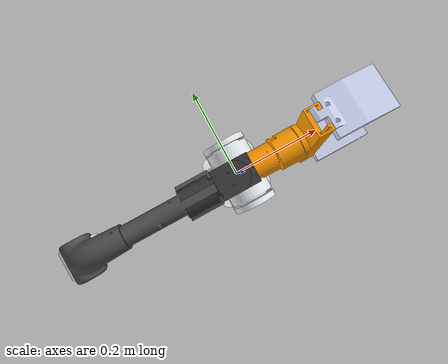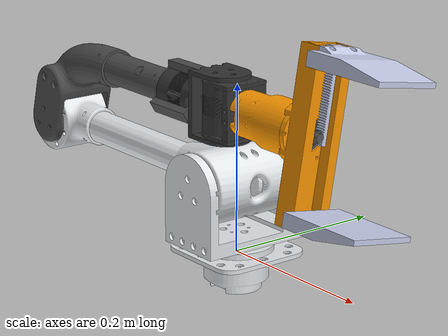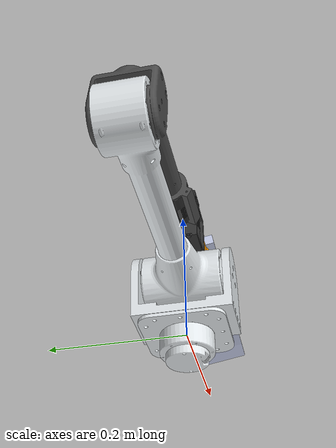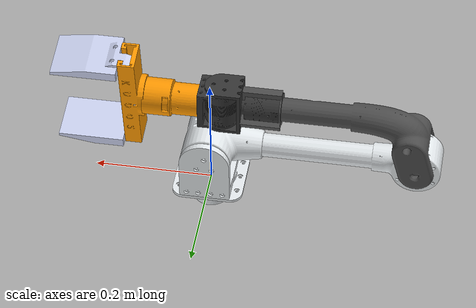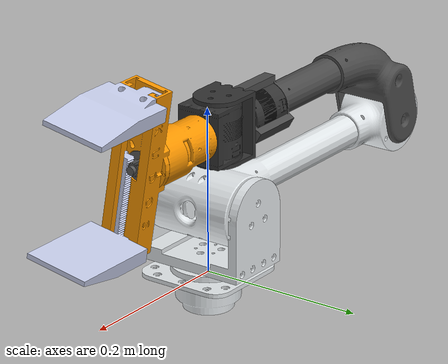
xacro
<?xml version="1.0"?>
<robot xmlns:xacro="http://www.ros.org/wiki/xacro" name="arm_only_gripper">
    <xacro:arg name="use_embedded_ros2_control" default="false" />
    <xacro:arg name="initial_positions_file" default="initial_positions.yaml" />

    <!-- Import arm_only_gripper urdf file -->
    <xacro:include filename="$(find arm_only_description)/urdf/arm_only_gripper_moveit.urdf.xacro" />

    <!-- Import control_xacro -->
    <xacro:include filename="arm_only_gripper.ros2_control.xacro" />

    <xacro:arm_only_gripper_ros2_control name="FakeSystem" initial_positions_file="$(arg initial_positions_file)"/>

</robot>

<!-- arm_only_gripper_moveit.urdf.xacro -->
<robot name="arm_only_gripper" xmlns:xacro="http://www.ros.org/wiki/xacro">
  <xacro:arg name="use_embedded_ros2_control" default="true"/>
  <link
    name="ARM_BASE_LINK">
    <inertial>
      <origin
        xyz="0 0 0"
        rpy="0 0 0" />
      <mass
        value="0.19" />
      <inertia
        ixx="0"
        ixy="0"
        ixz="0"
        iyy="0"
        iyz="0"
        izz="0" />
    </inertial>
    <visual>
      <origin
        xyz="0 0 0"
        rpy="0 0 0" />
      <geometry>
        <mesh
          filename="file://$(find arm_only_description)/meshes/ARM_BASE_LINK.STL" />
      </geometry>
      <material
        name="">
        <color
          rgba="0.89804 0.91765 0.92941 1" />
      </material>
    </visual>

    <collision name="ARM_BASE_LINK_120x120x15p7_box">
      <origin xyz="0 0 0.00785" rpy="0 0 0" />
      <geometry>
        <box size="0.12 0.12 0.0137" />
      </geometry>
    </collision>
  </link>
  <joint
    name="JOINT1"
    type="revolute">
    <origin
      xyz="0 0 0.016"
      rpy="0 0 0" />
    <parent
      link="ARM_BASE_LINK" />
    <child
      link="LINK1" />
    <axis
      xyz="0 0 1" />
    <limit lower="-0.78540" upper="2.26893" effort="35" velocity="1.2" />
      <dynamics damping="2" friction="0.3" />
  </joint>
  <link
    name="LINK1">
    <inertial>
      <origin
        xyz="0 0 0.01"
        rpy="0 0 0" />
      <mass
        value="1.37" />
      <inertia
        ixx="0"
        ixy="0"
        ixz="0"
        iyy="0"
        iyz="0"
        izz="0" />
    </inertial>
    <visual>
      <origin
        xyz="0 0 0"
        rpy="0 0 0" />
      <geometry>
        <mesh
          filename="file://$(find arm_only_description)/meshes/LINK1.STL" />
      </geometry>
      <material
        name="">
        <color
          rgba="0.89804 0.91765 0.92941 1" />
      </material>
    </visual>

    <collision name="LINK1_digeut_bottom_box">
      <origin xyz="0 0 0.00823" rpy="0 0 1.5708" />
      <geometry>
        <box size="0.141 0.0855 0.0175" />
      </geometry>
    </collision>

    <collision name="LINK1_digeut_right_box">
      <origin xyz="0 0.06525 0.064105" rpy="0 0 1.5708" />
      <geometry>
        <box size="0.013 0.087 0.09675" />
      </geometry>
    </collision>

    <collision name="LINK1_digeut_left_box">
      <origin xyz="0 -0.06525 0.064105" rpy="0 0 1.5708" />
      <geometry>
        <box size="0.013 0.087 0.09675" />
      </geometry>
    </collision>
  </link>
  <link
    name="LINK2">
    <inertial>
      <origin
        xyz="-0.05 0 0"
        rpy="0 0 0" />
      <mass
        value="1.53" />
      <inertia
        ixx="0"
        ixy="0"
        ixz="0"
        iyy="0.02"
        iyz="0"
        izz="0.02" />
    </inertial>
    <visual>
      <origin
        xyz="0 0 0"
        rpy="0 0 0" />
      <geometry>
        <mesh
          filename="file://$(find arm_only_description)/meshes/LINK2.STL" />
      </geometry>
      <material
        name="">
        <color
          rgba="0.89804 0.91765 0.92941 1" />
      </material>
    </visual>

    <collision name="LINK2_manual_cyl_01_y_axis">
      <origin xyz="0 0 0" rpy="1.5708 0 0" />
      <geometry>
        <cylinder radius="0.043" length="0.1105" />
      </geometry>
    </collision>

    <collision name="LINK2_manual_cyl_02_x_axis">
      <origin xyz="-0.155525 0 0" rpy="0 1.5708 0" />
      <geometry>
        <cylinder radius="0.022" length="0.31105" />
      </geometry>
    </collision>

    <collision name="LINK2_manual_cyl_03_y_axis">
      <origin xyz="-0.35042 0 -0.00031" rpy="1.5708 0 0" />
      <geometry>
        <cylinder radius="0.042" length="0.061" />
      </geometry>
    </collision>
  </link>
  <joint
    name="JOINT2"
    type="revolute">
    <origin
      xyz="0 0 0.07"
      rpy="0 0 0" />
    <parent
      link="LINK1" />
    <child
      link="LINK2" />
    <axis xyz="0 1 0" />
    <limit lower="0.00000" upper="3.14159" effort="35" velocity="1.2" />
      <dynamics damping="2" friction="0.3" />
  </joint>
  <link
    name="LINK3">
    <inertial>
      <origin
        xyz="0.05 0 0.04"
        rpy="0 0 0" />
      <mass
        value="1.07" />
      <inertia
        ixx="0"
        ixy="0"
        ixz="0"
        iyy="0.01"
        iyz="0"
        izz="0.01" />
    </inertial>
    <visual>
      <origin
        xyz="0 0 0"
        rpy="0 0 0" />
      <geometry>
        <mesh
          filename="file://$(find arm_only_description)/meshes/LINK3.STL" />
      </geometry>
      <material
        name="">
        <color
          rgba="0.29804 0.29804 0.29804 1" />
      </material>
    </visual>

    <collision name="LINK3_manual_cyl_01_x_axis">
      <origin xyz="0.151715 0 0.08328" rpy="0 1.5708 0" />
      <geometry>
        <cylinder radius="0.022" length="0.15233" />
      </geometry>
    </collision>

    <collision name="LINK3_manual_cyl_02_x_axis">
      <origin xyz="0.26088 0 0.08328" rpy="0 1.5708 0" />
      <geometry>
        <cylinder radius="0.0365" length="0.068" />
      </geometry>
    </collision>

    <collision name="LINK3_joint3_side_box_minus_y">
      <origin xyz="0.005 -0.03635 0.022" rpy="0 0 0" />
      <geometry>
        <box size="0.070 0.0085 0.105" />
      </geometry>
    </collision>

    <collision name="LINK3_joint3_side_box_plus_y">
      <origin xyz="0.005 0.03835 0.022" rpy="0 0 0" />
      <geometry>
        <box size="0.070 0.0085 0.105" />
      </geometry>
    </collision>

    <collision name="LINK3_joint3_slant_cyl_30deg">
      <origin xyz="0.0175 -0.00025 0.062" rpy="0 1.0472 0" />
      <geometry>
        <cylinder radius="0.029" length="0.076" />
      </geometry>
    </collision>

    <collision name="LINK3_joint3_slant_cyl_5deg">
      <origin xyz="0.075 -0.00025 0.082" rpy="0 1.4835 0" />
      <geometry>
        <cylinder radius="0.0275" length="0.080" />
      </geometry>
    </collision>
  </link>
  <joint
    name="JOINT3"
    type="revolute">
    <origin
      xyz="-0.35 -0.00025005 0"
      rpy="0 0 0" />
    <parent
      link="LINK2" />
    <child
      link="LINK3" />
    <axis xyz="0 1 0" />
    <limit lower="-3.14159" upper="0.00000" effort="35" velocity="1.2" />
      <dynamics damping="2" friction="0.3" />
  </joint>
  <link
    name="LINK4">
    <inertial>
      <origin
        xyz="0.01 0 0"
        rpy="0 0 0" />
      <mass
        value="0.2" />
      <inertia
        ixx="0"
        ixy="0"
        ixz="0"
        iyy="0"
        iyz="0"
        izz="0" />
    </inertial>
    <visual>
      <origin
        xyz="0 0 0"
        rpy="1.5708 0 0" />
      <geometry>
        <mesh
          filename="file://$(find arm_only_description)/meshes/LINK4.STL" />
      </geometry>
      <material
        name="">
        <color
          rgba="0.20392 0.20392 0.20392 1" />
      </material>
    </visual>

    <collision name="LINK4_manual_box_01_center">
      <origin xyz="0.0063 0 0" rpy="0 0 0" />
      <geometry>
        <box size="0.008 0.071 0.058" />
      </geometry>
    </collision>

    <collision name="LINK4_manual_box_02_plus_y">
      <origin xyz="0.0345 0.0385 0" rpy="0 0 0" />
      <geometry>
        <box size="0.064 0.008 0.057" />
      </geometry>
    </collision>

    <collision name="LINK4_manual_box_03_minus_y">
      <origin xyz="0.0345 -0.0385 0" rpy="0 0 0" />
      <geometry>
        <box size="0.064 0.008 0.057" />
      </geometry>
    </collision>
  </link>
  <joint
    name="JOINT4"
    type="revolute">
    <origin xyz="0.29265 0 0.083467" rpy="1.57079632679 0 0" />
    <parent
      link="LINK3" />
    <child
      link="LINK4" />
    <axis
      xyz="1 0 0" />
    <limit lower="-1.65806" upper="1.65806" effort="35" velocity="1.2" />
      <dynamics damping="2" friction="0.3" />
  </joint>
  <link
    name="LINK5">
    <inertial>
      <origin
        xyz="0.02 0 0"
        rpy="0 0 0" />
      <mass
        value="0.49" />
      <inertia
        ixx="0"
        ixy="0"
        ixz="0"
        iyy="0"
        iyz="0"
        izz="0" />
    </inertial>
    <visual>
      <origin
        xyz="0 0 0"
        rpy="1.5708 0 0" />
      <geometry>
        <mesh
          filename="file://$(find arm_only_description)/meshes/LINK5.STL" />
      </geometry>
      <material
        name="">
        <color
          rgba="0.20392 0.20392 0.20392 1" />
      </material>
    </visual>

    <collision name="LINK5_manual_cyl_01_y_axis">
      <origin xyz="0 0 0" rpy="1.5708 0 0" />
      <geometry>
        <cylinder radius="0.028" length="0.0585" />
      </geometry>
    </collision>

    <collision name="LINK5_manual_box_02_center_x">
      <origin xyz="0.032 0 0" rpy="0 0 0" />
      <geometry>
        <box size="0.0105 0.0585 0.0565" />
      </geometry>
    </collision>

    <collision name="LINK5_manual_box_03_minus_y">
      <origin xyz="0.0045 -0.0315 0" rpy="0 0 0" />
      <geometry>
        <box size="0.0655 0.0055 0.0565" />
      </geometry>
    </collision>

    <collision name="LINK5_manual_box_04_plus_y">
      <origin xyz="0.0045 0.0315 0" rpy="0 0 0" />
      <geometry>
        <box size="0.0655 0.0065 0.0565" />
      </geometry>
    </collision>
  </link>
  <joint
    name="JOINT5"
    type="revolute">
    <origin
      xyz="0.038 0 0"
      rpy="0 0 0" />
    <parent
      link="LINK4" />
    <child
      link="LINK5" />
    <axis xyz="0 -1 0" />
    <limit lower="-1.22173" upper="1.22173" effort="35" velocity="1.2" />
      <dynamics damping="2" friction="0.3" />
  </joint>
  <link
    name="LINK6">
    <inertial>
      <origin
        xyz="0.01 0 0"
        rpy="0 0 0" />
      <mass
        value="0.36" />
      <inertia
        ixx="0"
        ixy="0"
        ixz="0"
        iyy="0"
        iyz="0"
        izz="0" />
    </inertial>
    <visual>
      <origin
        xyz="0 0 0"
        rpy="0 0 0" />
      <geometry>
        <mesh
          filename="file://$(find arm_only_description)/meshes/LINK6.STL" />
      </geometry>
      <material
        name="">
        <color
          rgba="1 0.6 0 1" />
      </material>
    </visual>

    <collision name="LINK6_manual_cyl_01_x_axis">
      <origin xyz="-0.02175 0 0" rpy="0 1.5708 0" />
      <geometry>
        <cylinder radius="0.0275" length="0.044" />
      </geometry>
    </collision>

    <collision name="LINK6_manual_cyl_02_x_axis">
      <origin xyz="0.025 0 0" rpy="0 1.5708 0" />
      <geometry>
        <cylinder radius="0.0315" length="0.0505" />
      </geometry>
    </collision>
  </link>
  <joint
    name="JOINT6"
    type="continuous">
    <origin
      xyz="0.08175 0 0"
      rpy="0 0 0" />
    <parent
      link="LINK5" />
    <child
      link="LINK6" />
    <axis
      xyz="-1 0 0" />
    <limit effort="35" velocity="1.2" />
      <dynamics damping="2" friction="0.3" />
  </joint>
  <link
    name="gripper_base">
    <inertial>
      <origin xyz="0 0 0" rpy="0 0 0" />
      <mass value="0.8" />
      <inertia ixx="0.0010" ixy="0" ixz="0" iyy="0.0010" iyz="0" izz="0.0010" />
    </inertial>
    <visual>
      <origin
        xyz="0 0 0"
        rpy="3.14159265359 0.00000000000 0.00000000000" />
      <geometry>
        <mesh
          filename="file://$(find arm_only_description)/meshes/gripper_base.STL" />
      </geometry>
      <material
        name="">
        <color
          rgba="1 0.6 0 1" />
      </material>
    </visual>

    <!-- GRIPPER_COLLISION_TUNING_START: gripper_base -->
    <!-- GRIPPER_COLLISION_TUNING_END: gripper_base -->

    <collision name="gripper_base_sw_box_01_main_swapped">
      <origin xyz="0.02107 0 0" rpy="0 0 0" />
      <geometry>
        <box size="0.0295 0.2015 0.0515" />
      </geometry>
    </collision>
  </link>
  <joint
    name="gripper_mount_joint"
    type="fixed">
    <origin
      xyz="0.04825 0 0"
      rpy="-0.16782 0 0" />
    <parent
      link="LINK6" />
    <child
      link="gripper_base" />
  </joint>
  <link
    name="drive_gear">
    <inertial>
      <origin xyz="0 0 0" rpy="0 0 0" />
      <mass value="0.05" />
      <inertia ixx="0.00001" ixy="0" ixz="0" iyy="0.00001" iyz="0" izz="0.00001" />
    </inertial>

    <visual name="drive_gear_clean_visual">
      <origin xyz="0 0 0" rpy="0 0 0" />
      <geometry>
        <mesh filename="file://$(find arm_only_description)/meshes/drive_gear_clean.STL" />
      </geometry>
      <material name="drive_gear_mat">
        <color rgba="0.35 0.35 0.35 1" />
      </material>
    </visual>

    <!-- GRIPPER_COLLISION_TUNING_START: drive_gear -->
    <!-- GRIPPER_COLLISION_TUNING_END: drive_gear -->
  </link>
  <joint
    name="JOINT7"
    type="revolute">
    <origin
      xyz="0.030611 9.6005E-05 1.6265E-05"
      rpy="0 0 0" />
    <parent
      link="gripper_base" />
    <child
      link="drive_gear" />
    <axis
      xyz="-1 0 0" />
    <limit lower="-1.78024" upper="6.42281" effort="20" velocity="8.0" />
      <dynamics damping="4.0" friction="1.0" />
  </joint>
  <link
    name="LEFT_PLATE">
    <inertial>
      <origin xyz="0 0 0" rpy="0 0 0" />
      <mass value="0.15" />
      <inertia ixx="0.00008" ixy="0" ixz="0" iyy="0.00008" iyz="0" izz="0.00008" />
    </inertial>

    <visual name="LEFT_PLATE_clean_visual">
      <origin xyz="0 0 0" rpy="0 0 0" />
      <geometry>
        <mesh filename="file://$(find arm_only_description)/meshes/LEFT_PLATE_clean.STL" />
      </geometry>
      <material name="LEFT_PLATE_mat">
        <color rgba="0.79216 0.81961 0.93333 1" />
      </material>
    </visual>

    <!-- GRIPPER_COLLISION_TUNING_START: LEFT_PLATE -->
    <!-- GRIPPER_COLLISION_TUNING_END: LEFT_PLATE -->

    <collision name="LEFT_PLATE_sw_box_01_main">
      <origin xyz="0.07 -0.016 0.021" rpy="0 0 0" />
      <geometry>
        <box size="0.111 0.013 0.082" />
      </geometry>
    </collision>
  </link>
  <joint
    name="LEFT_PLATE_JOINT"
    type="prismatic">
    <origin
      xyz="0.0211 0.1 -0.022"
      rpy="0 0 0" />
    <parent
      link="gripper_base" />
    <child
      link="LEFT_PLATE" />
    <axis xyz="-0 -1 -0" />
    <mimic joint="JOINT7" multiplier="0.0166667" offset="0.0" />
    <limit
      lower="0.0" upper="0.070" effort="80" velocity="1.0" />
    <dynamics damping="20.0" friction="8.0" />
  </joint>
  <link
    name="RIGHT_PLATE">
    <inertial>
      <origin xyz="0 0 0" rpy="0 0 0" />
      <mass value="0.15" />
      <inertia ixx="0.00008" ixy="0" ixz="0" iyy="0.00008" iyz="0" izz="0.00008" />
    </inertial>

    <visual name="RIGHT_PLATE_clean_visual">
      <origin xyz="0 0 0" rpy="0 0 0" />
      <geometry>
        <mesh filename="file://$(find arm_only_description)/meshes/RIGHT_PLATE.STL" />
      </geometry>
      <material name="RIGHT_PLATE_mat">
        <color rgba="0.79216 0.81961 0.93333 1" />
      </material>
    </visual>

    <!-- GRIPPER_COLLISION_TUNING_START: RIGHT_PLATE -->
    <!-- GRIPPER_COLLISION_TUNING_END: RIGHT_PLATE -->

    <collision name="RIGHT_PLATE_sw_box_01_main">
      <origin xyz="0.07 0.016 -0.023" rpy="0 0 0" />
      <geometry>
        <box size="0.111 0.013 0.082" />
      </geometry>
    </collision>
  </link>
  <joint
    name="RIGHT_PLATE_JOINT"
    type="prismatic">
    <origin
      xyz="0.0211 -0.1 0.022"
      rpy="0 0 0" />
    <parent
      link="gripper_base" />
    <child
      link="RIGHT_PLATE" />
    <axis
      xyz="0 1 0" />
    <mimic joint="JOINT7" multiplier="0.0166667" offset="0.0" />
    <limit
      lower="0.0" upper="0.070" effort="80" velocity="1.0" />
    <dynamics damping="20.0" friction="8.0" />
  </joint>

  <link name="gripper_tcp"/>

  <joint name="gripper_tcp_joint" type="fixed">
    <origin xyz="0.0904 9.6005E-05 -0.0001" rpy="0 0 0" />
    <parent link="gripper_base" />
    <child link="gripper_tcp" />
  </joint>

  <!-- ROS2_CONTROL_STANDARD_START -->
  <!-- EMBEDDED_ROS2_CONTROL_WRAP_START -->
  <xacro:if value="$(arg use_embedded_ros2_control)">
  <ros2_control name="GazeboSystem" type="system">
    <hardware>
      <plugin>gazebo_ros2_control/GazeboSystem</plugin>
    </hardware>

    <joint name="JOINT1">
      <command_interface name="position" />
      <state_interface name="position"><param name="initial_value">0.0</param></state_interface>
      <state_interface name="velocity" />
      <state_interface name="effort" />
    </joint>
    <joint name="JOINT2">
      <command_interface name="position" />
      <state_interface name="position"><param name="initial_value">0.58173277828</param></state_interface>
      <state_interface name="velocity" />
      <state_interface name="effort" />
    </joint>
    <joint name="JOINT3">
      <command_interface name="position" />
      <state_interface name="position"><param name="initial_value">-0.37726745641</param></state_interface>
      <state_interface name="velocity" />
      <state_interface name="effort" />
    </joint>
    <joint name="JOINT4">
      <command_interface name="position" />
      <state_interface name="position"><param name="initial_value">0.0</param></state_interface>
      <state_interface name="velocity" />
      <state_interface name="effort" />
    </joint>
    <joint name="JOINT5">
      <command_interface name="position" />
      <state_interface name="position"><param name="initial_value">0.0</param></state_interface>
      <state_interface name="velocity" />
      <state_interface name="effort" />
    </joint>
    <joint name="JOINT6">
      <command_interface name="position" />
      <state_interface name="position"><param name="initial_value">-0.78289622440</param></state_interface>
      <state_interface name="velocity" />
      <state_interface name="effort" />
    </joint>
    <joint name="JOINT7">
      <command_interface name="position" />
      <state_interface name="position"><param name="initial_value">-1.78024</param></state_interface>
      <state_interface name="velocity" />
      <state_interface name="effort" />
    </joint>
    <joint name="LEFT_PLATE_JOINT">
      <command_interface name="position" />
      <state_interface name="position"><param name="initial_value">0.0</param></state_interface>
      <state_interface name="velocity" />
      <state_interface name="effort" />
    </joint>
    <joint name="RIGHT_PLATE_JOINT">
      <command_interface name="position" />
      <state_interface name="position"><param name="initial_value">0.0</param></state_interface>
      <state_interface name="velocity" />
      <state_interface name="effort" />
    </joint>
  </ros2_control>
  </xacro:if>
  <!-- EMBEDDED_ROS2_CONTROL_WRAP_END -->
  <!-- EMBEDDED_GAZEBO_ROS2_CONTROL_PLUGIN_WRAP_START -->
  <xacro:if value="$(arg use_embedded_ros2_control)">
  </xacro:if>
  <!-- EMBEDDED_GAZEBO_ROS2_CONTROL_PLUGIN_WRAP_END -->
  <!-- ROS2_CONTROL_STANDARD_END -->

  <!-- Gripper pose-check stabilization: prevent passive gripper parts from sagging before controllers are added -->
  <gazebo reference="gripper_base">
    <gravity>false</gravity>
    <selfCollide>false</selfCollide>
  </gazebo>

  <gazebo reference="drive_gear">
    <gravity>false</gravity>
    <selfCollide>false</selfCollide>
  </gazebo>

  <gazebo reference="LEFT_PLATE">
    <gravity>false</gravity>
    <selfCollide>false</selfCollide>
  </gazebo>

  <gazebo reference="RIGHT_PLATE">
    <gravity>false</gravity>
    <selfCollide>false</selfCollide>
  </gazebo>
<!-- Gazebo: fix the actual root/base links so the robot body does not float or stand up. -->

  <gazebo>
    <plugin filename="libgazebo_ros2_control.so" name="gazebo_ros2_control">
      <robot_param>robot_description</robot_param>
      <robot_param_node>robot_state_publisher</robot_param_node>
      <parameters>$(find arm_only_moveit_config)/config/ros2_controllers.yaml</parameters>
      <hold_joints>true</hold_joints>
    </plugin>
  </gazebo>

</robot>
